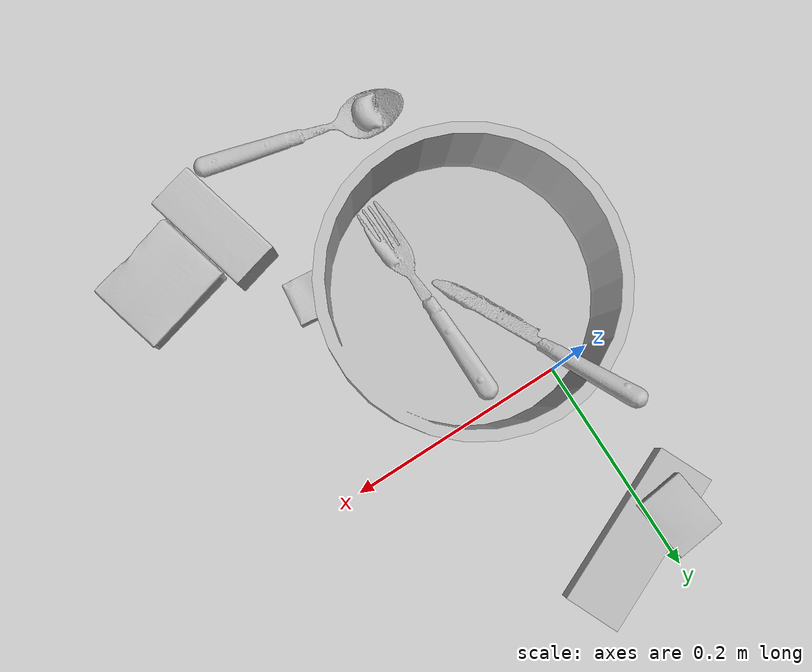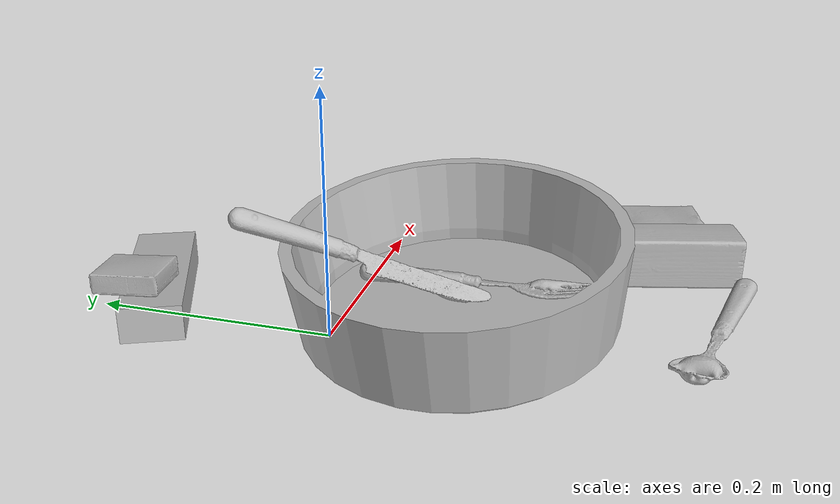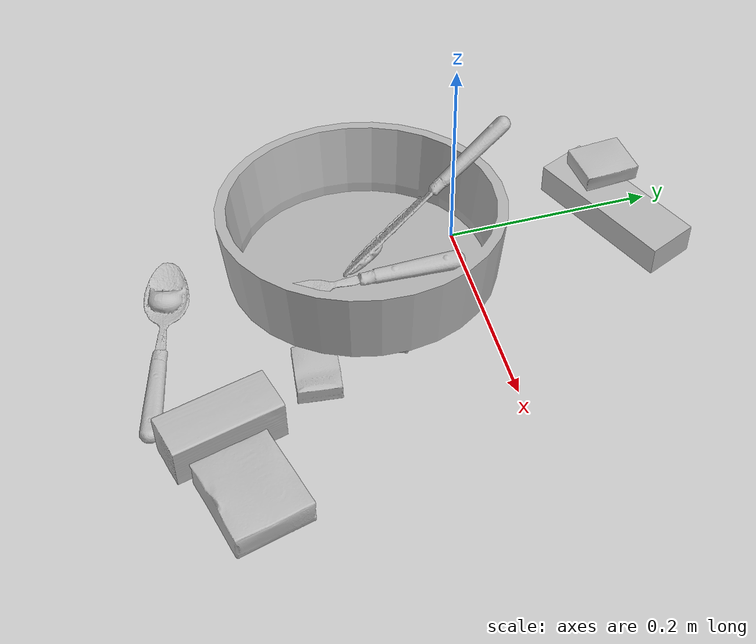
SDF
<sdf version="1.4">
  <world name="default">
    <light name="light1" type="point">
      <pose>0 0 1 0 0 0</pose>
      <diffuse>3 3 3 1</diffuse>
      <specular>3 3 3 1</specular>
    </light>
    <light name="light2" type="point">
      <pose>0 0.5 2 0 0 0</pose>
      <diffuse>1 1 1 1</diffuse>
      <specular>1 1 1 1</specular>
    </light>
    <light name="light3" type="point">
      <pose>0 0.5 2 0 0 0</pose>
      <diffuse>3 3 3 1</diffuse>
      <specular>3 3 3 1</specular>
    </light>
    <scene>
      <ambient>0.7 0.7 0.7</ambient>
    </scene>
    <model name="box11">
      <link name="link_box11">
        <collision name="default">
          <geometry>
            <mesh>
              <uri>model://sugar_box/collision_meshes/collision.obj</uri>
              <scale>0.5 0.5 0.5</scale>
            </mesh>
          </geometry>
          <surface>
            <friction>
              <ode>
                <mu>0.5</mu>
                <mu2>0.5</mu2>
              </ode>
            </friction>
          <contact>
        <ode>
            <max_vel>0</max_vel>
            <min_depth>0.0001</min_depth>
            <kp>1e8</kp>
        </ode>
    </contact></surface>
        </collision>
        <visual name="default">
          <geometry>
            <mesh>
              <uri>model://sugar_box/visual_meshes/visual.dae</uri>
              <scale>0.5 0.5 0.5</scale>
            </mesh>
          </geometry>
        </visual>
        <inertial>
          <mass>0.0727815181016922</mass>
          <pose>0.0005171863595023751 1.924554817378521e-05 -0.00018182402709499002 -0.0004046263004245651 0.001050663405794887 0.002615379021776999</pose>
          <inertia>
            <ixx>1.5160335e-05</ixx>
            <iyy>4.900132e-05</iyy>
            <izz>5.8660433e-05</izz>
            <ixy>0</ixy>
            <ixz>0</ixz>
            <iyz>0</iyz>
          </inertia>
        </inertial>
      </link>
      <pose>0.0965595543384552 -0.11435519903898239 0.011616389267146587 -0.03749261585547264 -0.011202532225725738 1.188918149772437</pose>
    </model>
    <model name="box12">
      <link name="link_box12">
        <collision name="default">
          <geometry>
            <mesh>
              <uri>model://gelatin_box/collision_meshes/collision.obj</uri>
              <scale>1.0 1.0 1.0</scale>
            </mesh>
          </geometry>
          <surface>
            <friction>
              <ode>
                <mu>0.5</mu>
                <mu2>0.5</mu2>
              </ode>
            </friction>
          <contact>
        <ode>
            <max_vel>0</max_vel>
            <min_depth>0.0001</min_depth>
            <kp>1e8</kp>
        </ode>
    </contact></surface>
        </collision>
        <visual name="default">
          <geometry>
            <mesh>
              <uri>model://gelatin_box/visual_meshes/visual.dae</uri>
              <scale>1.0 1.0 1.0</scale>
            </mesh>
          </geometry>
        </visual>
        <inertial>
          <mass>0.2761145234107971</mass>
          <pose>0.000431961816502735 0.00011156871187267825 -0.0003640321083366871 -0.0010503719804291966 -0.004755819155973465 0.01644055947187314</pose>
          <inertia>
            <ixx>0.00019491432</ixx>
            <iyy>0.00013922628</iyy>
            <izz>0.00029670302</izz>
            <ixy>0</ixy>
            <ixz>0</ixz>
            <iyz>0</iyz>
          </inertia>
        </inertial>
      </link>
      <pose>0.24813519418239594 -0.2460741549730301 0.01516831386834383 0.005597154554068865 -0.007304256801881452 -1.3199899872190273</pose>
    </model>
    <model name="box13">
      <link name="link_box13">
        <collision name="default">
          <geometry>
            <mesh>
              <uri>model://jenga/collision_meshes/collision.obj</uri>
              <scale>1.0 1.0 1.0</scale>
            </mesh>
          </geometry>
          <surface>
            <friction>
              <ode>
                <mu>0.5</mu>
                <mu2>0.5</mu2>
              </ode>
            </friction>
          <contact>
        <ode>
            <max_vel>0</max_vel>
            <min_depth>0.0001</min_depth>
            <kp>1e8</kp>
        </ode>
    </contact></surface>
        </collision>
        <visual name="default">
          <geometry>
            <mesh>
              <uri>model://jenga/visual_meshes/visual.dae</uri>
              <scale>1.0 1.0 1.0</scale>
            </mesh>
          </geometry>
        </visual>
        <inertial>
          <mass>0.30891793966293335</mass>
          <pose>-2.502855807051674e-07 -0.0001025000965455547 -4.0923401684267446e-05 0.0 -7.34215461761844e-07 0.0</pose>
          <inertia>
            <ixx>8.548509e-05</ixx>
            <iyy>0.00057924463</iyy>
            <izz>0.0006183929</izz>
            <ixy>0</ixy>
            <ixz>0</ixz>
            <iyz>0</iyz>
          </inertia>
        </inertial>
      </link>
      <pose>0.021085891872644424 0.15935853123664856 0.014999997802078724 7.20260465207181e-08 3.1405952214153654e-08 0.4200958307758465</pose>
    </model>
    <model name="box21">
      <link name="link_box21">
        <collision name="default">
          <geometry>
            <mesh>
              <uri>model://pudding_box/collision_meshes/collision.obj</uri>
              <scale>0.5 0.5 0.5</scale>
            </mesh>
          </geometry>
          <surface>
            <friction>
              <ode>
                <mu>0.5</mu>
                <mu2>0.5</mu2>
              </ode>
            </friction>
          <contact>
        <ode>
            <max_vel>0</max_vel>
            <min_depth>0.0001</min_depth>
            <kp>1e8</kp>
        </ode>
    </contact></surface>
        </collision>
        <visual name="default">
          <geometry>
            <mesh>
              <uri>model://pudding_box/visual_meshes/visual.dae</uri>
              <scale>0.5 0.5 0.5</scale>
            </mesh>
          </geometry>
        </visual>
        <inertial>
          <mass>0.049023520201444626</mass>
          <pose>0.0002447411243338138 0.00040339428232982755 -0.0002594413817860186 0.005213100395594636 -0.006603798704538055 0.020079825164231697</pose>
          <inertia>
            <ixx>1.3854642e-05</ixx>
            <iyy>9.321502e-06</iyy>
            <izz>2.046e-05</izz>
            <ixy>0</ixy>
            <ixz>0</ixz>
            <iyz>0</iyz>
          </inertia>
        </inertial>
      </link>
      <pose>-0.01589384116232395 0.1586635559797287 0.03986290097236633 0.02234780036086375 -0.01139220706745702 -3.0241329724888617</pose>
    </model>
    <model name="box22">
      <link name="link_box22">
        <collision name="default">
          <geometry>
            <mesh>
              <uri>model://wood_block/collision_meshes/collision.obj</uri>
              <scale>0.5 0.5 0.5</scale>
            </mesh>
          </geometry>
          <surface>
            <friction>
              <ode>
                <mu>0.5</mu>
                <mu2>0.5</mu2>
              </ode>
            </friction>
          <contact>
        <ode>
            <max_vel>0</max_vel>
            <min_depth>0.0001</min_depth>
            <kp>1e8</kp>
        </ode>
    </contact></surface>
        </collision>
        <visual name="default">
          <geometry>
            <mesh>
              <uri>model://wood_block/visual_meshes/visual.dae</uri>
              <scale>0.5 0.5 0.5</scale>
            </mesh>
          </geometry>
        </visual>
        <inertial>
          <mass>0.3074011206626892</mass>
          <pose>-2.9066577553749084e-06 -0.000285404734313488 0.00013204291462898254 -0.05220975528717129 -0.005192695583989696 -0.0068613793241849635</pose>
          <inertia>
            <ixx>0.00010283729</ixx>
            <iyy>0.00032486304</iyy>
            <izz>0.0003236479</izz>
            <ixy>0</ixy>
            <ixz>0</ixz>
            <iyz>0</iyz>
          </inertia>
        </inertial>
      </link>
      <pose>0.18264785408973694 -0.25958052277565 0.0226292684674263 -0.005208393519766373 0.005718777368130833 -1.3147759938840566</pose>
    </model>
    <model name="box23">
      <link name="link_box23">
        <collision name="default">
          <geometry>
            <mesh>
              <uri>model://cracker_box/collision_meshes/collision.obj</uri>
              <scale>0.25 0.25 0.25</scale>
            </mesh>
          </geometry>
          <surface>
            <friction>
              <ode>
                <mu>0.5</mu>
                <mu2>0.5</mu2>
              </ode>
            </friction>
          <contact>
        <ode>
            <max_vel>0</max_vel>
            <min_depth>0.0001</min_depth>
            <kp>1e8</kp>
        </ode>
    </contact></surface>
        </collision>
        <visual name="default">
          <geometry>
            <mesh>
              <uri>model://cracker_box/visual_meshes/visual.dae</uri>
              <scale>0.25 0.25 0.25</scale>
            </mesh>
          </geometry>
        </visual>
        <inertial>
          <mass>0.04833315312862396</mass>
          <pose>0.00023660357692278922 6.358561950037256e-05 -0.00042573834070935845 -0.0003162077466025917 -0.011106490531569568 0.002546795235651085</pose>
          <inertia>
            <ixx>7.683624e-06</ixx>
            <iyy>1.268717e-05</iyy>
            <izz>1.8105757e-05</izz>
            <ixy>0</ixy>
            <ixz>0</ixz>
            <iyz>0</iyz>
          </inertia>
        </inertial>
      </link>
      <pose>0.13628411293029785 -0.1662348061800003 0.00909603200852871 -0.014049971369610496 -0.005016509130012489 3.030453309403261</pose>
    </model>
    <model name="plate1">
      <link name="link_plate1">
        <collision name="default">
          <geometry>
            <mesh>
              <uri>model://pan_tefal/collision_meshes/collision.obj</uri>
              <scale>1.0 1.0 1.0</scale>
            </mesh>
          </geometry>
          <surface>
            <friction>
              <ode>
                <mu>0.5</mu>
                <mu2>0.5</mu2>
              </ode>
            </friction>
          <contact>
        <ode>
            <max_vel>0</max_vel>
            <min_depth>0.0001</min_depth>
            <kp>1e8</kp>
        </ode>
    </contact></surface>
        </collision>
        <visual name="default">
          <geometry>
            <mesh>
              <uri>model://pan_tefal/visual_meshes/visual.dae</uri>
              <scale>1.0 1.0 1.0</scale>
            </mesh>
          </geometry>
        </visual>
        <inertial>
          <mass>1.5598481893539429</mass>
          <pose>-0.0001800245518097654 3.279111842857674e-05 -0.008514934219419956 0.0008190275877392404 -0.0003301333888364595 -0.33185859522575717</pose>
          <inertia>
            <ixx>0.010767555</ixx>
            <iyy>0.010836974</iyy>
            <izz>0.019820997</izz>
            <ixy>0</ixy>
            <ixz>0</ixz>
            <iyz>0</iyz>
          </inertia>
        </inertial>
      </link>
      <pose>0.028638912364840508 -0.09553930908441544 0.05282527953386307 0.1236660325475141 0.01876196708103602 -2.0049177151295026</pose>
    </model>
    <model name="silverware1">
      <link name="link_silverware1">
        <collision name="default">
          <geometry>
            <mesh>
              <uri>model://fork/collision_meshes/collision.obj</uri>
              <scale>1.0 1.0 1.0</scale>
            </mesh>
          </geometry>
          <surface>
            <friction>
              <ode>
                <mu>0.5</mu>
                <mu2>0.5</mu2>
              </ode>
            </friction>
          <contact>
        <ode>
            <max_vel>0</max_vel>
            <min_depth>0.0001</min_depth>
            <kp>1e8</kp>
        </ode>
    </contact></surface>
        </collision>
        <visual name="default">
          <geometry>
            <mesh>
              <uri>model://fork/visual_meshes/visual.dae</uri>
              <scale>1.0 1.0 1.0</scale>
            </mesh>
          </geometry>
        </visual>
        <inertial>
          <mass>0.024598950520157814</mass>
          <pose>-0.029570043087005615 0.0004658824182115495 0.0003218861820641905 -0.013552328184634912 -0.010977839901754499 0.014453902526732686</pose>
          <inertia>
            <ixx>8.623325e-07</ixx>
            <iyy>6.422079e-05</iyy>
            <izz>6.460647e-05</izz>
            <ixy>0</ixy>
            <ixz>0</ixz>
            <iyz>0</iyz>
          </inertia>
        </inertial>
      </link>
      <pose>0.06106134131550789 -0.10447584092617035 0.03186216205358505 -0.00854786592146078 -0.005318566481523004 -1.5577532473906393</pose>
    </model>
    <model name="silverware2">
      <link name="link_silverware2">
        <collision name="default">
          <geometry>
            <mesh>
              <uri>model://knife/collision_meshes/collision.obj</uri>
              <scale>1.0 1.0 1.0</scale>
            </mesh>
          </geometry>
          <surface>
            <friction>
              <ode>
                <mu>0.5</mu>
                <mu2>0.5</mu2>
              </ode>
            </friction>
          <contact>
        <ode>
            <max_vel>0</max_vel>
            <min_depth>0.0001</min_depth>
            <kp>1e8</kp>
        </ode>
    </contact></surface>
        </collision>
        <visual name="default">
          <geometry>
            <mesh>
              <uri>model://knife/visual_meshes/visual.dae</uri>
              <scale>1.0 1.0 1.0</scale>
            </mesh>
          </geometry>
        </visual>
        <inertial>
          <mass>0.03473280370235443</mass>
          <pose>-0.02378525584936142 0.0015275126788765192 5.062021955382079e-05 0.0730594717304457 0.017248417183571667 -0.007409821049452296</pose>
          <inertia>
            <ixx>9.858578e-07</ixx>
            <iyy>0.00013343782</iyy>
            <izz>0.00013375531</izz>
            <ixy>0</ixy>
            <ixz>0</ixz>
            <iyz>0</iyz>
          </inertia>
        </inertial>
      </link>
      <pose>0.006408169865608215 -0.028301512822508812 0.06571000069379807 0.5685309631327305 0.3906237719381533 -1.1655592558699523</pose>
    </model>
    <model name="silverware3">
      <link name="link_silverware3">
        <collision name="default">
          <geometry>
            <mesh>
              <uri>model://spoon/collision_meshes/collision.obj</uri>
              <scale>1.0 1.0 1.0</scale>
            </mesh>
          </geometry>
          <surface>
            <friction>
              <ode>
                <mu>0.5</mu>
                <mu2>0.5</mu2>
              </ode>
            </friction>
          <contact>
        <ode>
            <max_vel>0</max_vel>
            <min_depth>0.0001</min_depth>
            <kp>1e8</kp>
        </ode>
    </contact></surface>
        </collision>
        <visual name="default">
          <geometry>
            <mesh>
              <uri>model://spoon/visual_meshes/visual.dae</uri>
              <scale>1.0 1.0 1.0</scale>
            </mesh>
          </geometry>
        </visual>
        <inertial>
          <mass>0.02618301659822464</mass>
          <pose>-0.0055263168178498745 -0.00160341733135283 -0.0007271658978424966 0.035216710647368914 -0.039065848798616645 0.0061506127138874515</pose>
          <inertia>
            <ixx>1.4563418e-06</ixx>
            <iyy>9.96255e-05</iyy>
            <izz>0.000100343714</izz>
            <ixy>0</ixy>
            <ixz>0</ixz>
            <iyz>0</iyz>
          </inertia>
        </inertial>
      </link>
      <pose>0.07455124706029892 -0.29755011200904846 0.00838526338338852 0.006732244809510256 0.02689290805821764 2.891260074382716</pose>
    </model>
  <physics type="ode">
      <max_contacts>50</max_contacts>
      <ode>
        <solver>
          <type>quick</type>
          <iters>75</iters>
        </solver>
        <constraints>
          <contact_max_correcting_vel>0</contact_max_correcting_vel>
          <contact_surface_layer>0</contact_surface_layer>
        </constraints>
      </ode>
    </physics></world>
</sdf>
